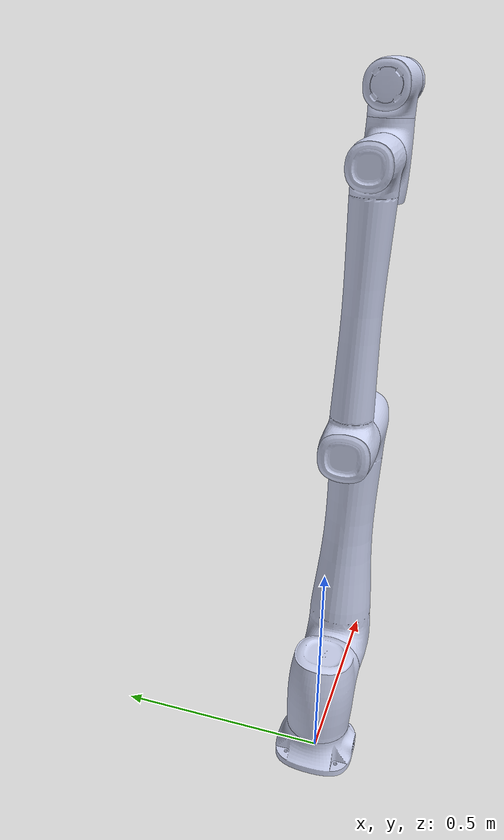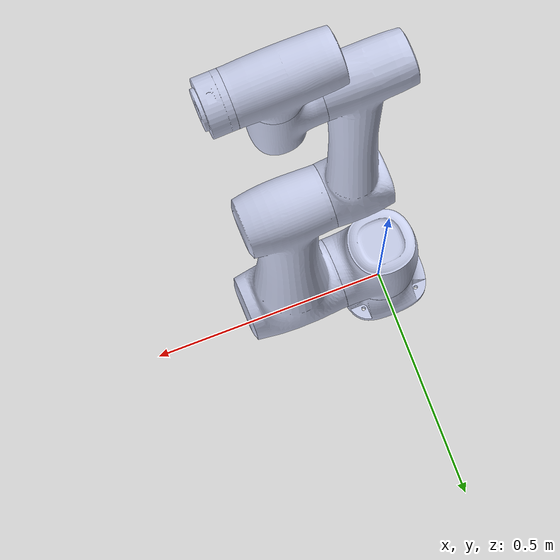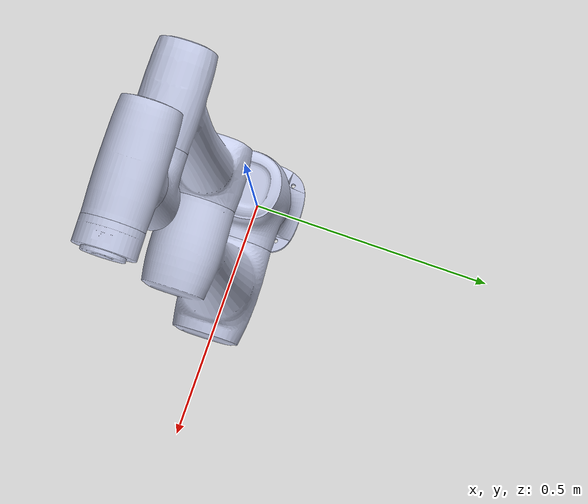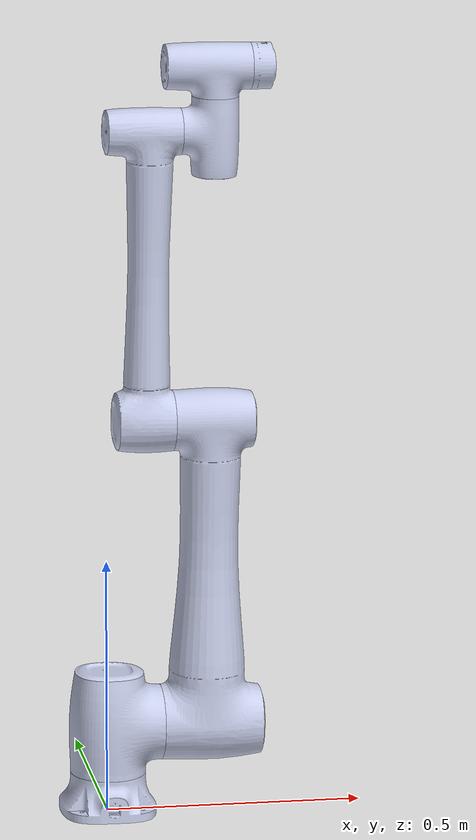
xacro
<?xml version="1.0"?>
<robot xmlns:xacro="http://www.ros.org/wiki/xacro" name="dobot_cr10">
    <xacro:arg name="initial_positions_file" default="initial_positions.yaml" />

    <!-- Import dobot_cr10 urdf file -->
    <xacro:include filename="$(find dobot_cr10_description)/urdf/dobot_cr10.urdf.xacro" />

    <!-- Import control_xacro -->

    <!-- Commented out - using ros2_control from main URDF instead -->

</robot>

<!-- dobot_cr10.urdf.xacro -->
<robot xmlns:xacro="http://www.ros.org/wiki/xacro" name="dobot_cr10">

  <!-- ===== PARAMETERS ===== -->
  <xacro:arg name="use_fake_hardware" default="false"/>
  <xacro:arg name="robot_ip" default="192.168.5.1"/>
  <xacro:arg name="robot_port" default="29999"/>
  <xacro:arg name="prefix" default=""/>

  <!-- ===== MATERIAL DEFINITIONS ===== -->
  <material name="dobot_blue">
    <color rgba="0.79216 0.81961 0.92941 1"/>
  </material>

  <!-- ===== BASE LINK ===== -->
  <link name="$(arg prefix)base_link">
    <inertial>
      <origin xyz="0.00043171 -0.0017808 0.034092" rpy="0 0 0"/>
      <mass value="1.7287"/>
      <inertia ixx="0.0041823" ixy="2.4931E-06" ixz="3.1074E-05"
               iyy="0.0040497" iyz="-3.8611E-05" izz="0.0065168"/>
    </inertial>
    <visual>
      <origin xyz="0 0 0" rpy="0 0 0"/>
      <geometry>
        <mesh filename="package://dobot_cr10_description/meshes/base_link.STL"/>
      </geometry>
      <material name="dobot_blue"/>
    </visual>
    <collision>
      <origin xyz="0 0 0" rpy="0 0 0"/>
      <geometry>
        <mesh filename="package://dobot_cr10_description/meshes/base_link.STL"/>
      </geometry>
    </collision>
  </link>

  <!-- ===== JOINT 1 ===== -->
  <joint name="$(arg prefix)joint_1" type="revolute">
    <origin xyz="0.0010064 -0.0021532 0.078964" rpy="0.026164 0.01264 0.02652"/>
    <parent link="$(arg prefix)base_link"/>
    <child link="$(arg prefix)link_1"/>
    <axis xyz="0 0 1"/>
    <limit lower="-6.28" upper="6.28" effort="150" velocity="2"/>
    <dynamics damping="0.0" friction="0.0"/>
  </joint>

  <!-- ===== LINK 1 ===== -->
  <link name="$(arg prefix)link_1">
    <inertial>
      <origin xyz="0.010819 -1.564E-06 0.10034" rpy="0 0 0"/>
      <mass value="4.1649"/>
      <inertia ixx="0.018824" ixy="1.0402E-07" ixz="9.6799E-05"
               iyy="0.020714" iyz="2.2865E-07" izz="0.014575"/>
    </inertial>
    <visual>
      <origin xyz="0 0 0" rpy="0 0 0"/>
      <geometry>
        <mesh filename="package://dobot_cr10_description/meshes/Link-1.STL"/>
      </geometry>
      <material name="dobot_blue"/>
    </visual>
    <collision>
      <origin xyz="0 0 0" rpy="0 0 0"/>
      <geometry>
        <mesh filename="package://dobot_cr10_description/meshes/Link-1.STL"/>
      </geometry>
    </collision>
  </link>

  <!-- ===== JOINT 2 ===== -->
  <joint name="$(arg prefix)joint_2" type="revolute">
    <origin xyz="0.102 0 0.0975" rpy="0 0 0"/>
    <parent link="$(arg prefix)link_1"/>
    <child link="$(arg prefix)link_2"/>
    <axis xyz="1 0 0"/>
    <limit lower="-3.14" upper="3.14" effort="150" velocity="2"/>
    <dynamics damping="0.0" friction="0.0"/>
  </joint>

  <!-- ===== LINK 2 ===== -->
  <link name="$(arg prefix)link_2">
    <inertial>
      <origin xyz="0.093151 -1.0433E-07 0.2463" rpy="0 0 0"/>
      <mass value="11.314"/>
      <inertia ixx="0.29972" ixy="6.9535E-08" ixz="0.0033374"
               iyy="0.30683" iyz="-1.3133E-08" izz="0.033617"/>
    </inertial>
    <visual>
      <origin xyz="0 0 0" rpy="0 0 0"/>
      <geometry>
        <mesh filename="package://dobot_cr10_description/meshes/Link-2.STL"/>
      </geometry>
      <material name="dobot_blue"/>
    </visual>
    <collision>
      <origin xyz="0 0 0" rpy="0 0 0"/>
      <geometry>
        <mesh filename="package://dobot_cr10_description/meshes/Link-2.STL"/>
      </geometry>
    </collision>
  </link>

  <!-- ===== JOINT 3 ===== -->
  <joint name="$(arg prefix)joint_3" type="revolute">
    <origin xyz="0.015 0 0.607" rpy="0 0 0"/>
    <parent link="$(arg prefix)link_2"/>
    <child link="$(arg prefix)link_3"/>
    <axis xyz="1 0 0"/>
    <limit lower="-6.28" upper="6.28" effort="100" velocity="2"/>
    <dynamics damping="0.0" friction="0.0"/>
  </joint>

  <!-- ===== LINK 3 ===== -->
  <link name="$(arg prefix)link_3">
    <inertial>
      <origin xyz="-0.0547042900306558 4.69055676521025E-07 0.270861245240957" rpy="0 0 0"/>
      <mass value="4.89191478863776"/>
      <inertia ixx="0.238369162166941" ixy="7.61885944041775E-08" ixz="0.00257869019852994"
               iyy="0.239673383068356" iyz="1.89742633549028E-08" izz="0.00715728937113017"/>
    </inertial>
    <visual>
      <origin xyz="0 0 0" rpy="0 0 0"/>
      <geometry>
        <mesh filename="package://dobot_cr10_description/meshes/Link-3.STL"/>
      </geometry>
      <material name="dobot_blue"/>
    </visual>
    <collision>
      <origin xyz="0 0 0" rpy="0 0 0"/>
      <geometry>
        <mesh filename="package://dobot_cr10_description/meshes/Link-3.STL"/>
      </geometry>
    </collision>
  </link>

  <!-- ===== JOINT 4 ===== -->
  <joint name="$(arg prefix)joint_4" type="revolute">
    <origin xyz="0.0075 0 0.568" rpy="0 0 0"/>
    <parent link="$(arg prefix)link_3"/>
    <child link="$(arg prefix)link_4"/>
    <axis xyz="1 0 0"/>
    <limit lower="-6.28" upper="6.28" effort="50" velocity="3"/>
    <dynamics damping="0.0" friction="0.0"/>
  </joint>

  <!-- ===== LINK 4 ===== -->
  <link name="$(arg prefix)link_4">
    <inertial>
      <origin xyz="0.060609253116529 3.28831690179161E-07 -0.00798726712724762" rpy="0 0 0"/>
      <mass value="1.16884724073703"/>
      <inertia ixx="0.00273281500514179" ixy="3.24876099751998E-09" ixz="5.4505786609508E-05"
               iyy="0.00292615337233013" iyz="7.60515741522402E-09" izz="0.00150056730806779"/>
    </inertial>
    <visual>
      <origin xyz="0 0 0" rpy="0 0 0"/>
      <geometry>
        <mesh filename="package://dobot_cr10_description/meshes/Link-4.STL"/>
      </geometry>
      <material name="dobot_blue"/>
    </visual>
    <collision>
      <origin xyz="0 0 0" rpy="0 0 0"/>
      <geometry>
        <mesh filename="package://dobot_cr10_description/meshes/Link-4.STL"/>
      </geometry>
    </collision>
  </link>

  <!-- ===== JOINT 5 ===== -->
  <joint name="$(arg prefix)joint_5" type="revolute">
    <origin xyz="0.0665 0 0.068" rpy="0 0 0"/>
    <parent link="$(arg prefix)link_4"/>
    <child link="$(arg prefix)link_5"/>
    <axis xyz="0 0 1"/>
    <limit lower="-6.28" upper="6.28" effort="50" velocity="3"/>
    <dynamics damping="0.0" friction="0.0"/>
  </joint>

  <!-- ===== LINK 5 ===== -->
  <link name="$(arg prefix)link_5">
    <inertial>
      <origin xyz="-0.0145467666760558 -6.13652700914707E-08 0.0524512917928925" rpy="0 0 0"/>
      <mass value="1.22302430677084"/>
      <inertia ixx="0.00149256719455683" ixy="2.62809254507745E-09" ixz="8.41893886453018E-05"
               iyy="0.00337901308952554" iyz="7.48934876097148E-09" izz="0.00323300506255286"/>
    </inertial>
    <visual>
      <origin xyz="0 0 0" rpy="0 0 0"/>
      <geometry>
        <mesh filename="package://dobot_cr10_description/meshes/Link-5.STL"/>
      </geometry>
      <material name="dobot_blue"/>
    </visual>
    <collision>
      <origin xyz="0 0 0" rpy="0 0 0"/>
      <geometry>
        <mesh filename="package://dobot_cr10_description/meshes/Link-5.STL"/>
      </geometry>
    </collision>
  </link>

  <!-- ===== JOINT 6 ===== -->
  <joint name="$(arg prefix)joint_6" type="revolute">
    <origin xyz="0.0665 0 0.057" rpy="0 0 0"/>
    <parent link="$(arg prefix)link_5"/>
    <child link="$(arg prefix)link_6"/>
    <axis xyz="1 0 0"/>
    <limit lower="-6.28" upper="6.28" effort="30" velocity="3"/>
    <dynamics damping="0.0" friction="0.0"/>
  </joint>

  <!-- ===== LINK 6 ===== -->
  <link name="$(arg prefix)link_6">
    <inertial>
      <origin xyz="0.0233267236804897 -6.60182229233081E-08 -0.000136438466677768" rpy="0 0 0"/>
      <mass value="0.207475731449731"/>
      <inertia ixx="0.000209920992588732" ixy="-3.57874154906935E-13" ixz="-2.86594531707672E-08"
               iyy="0.000113179735128728" iyz="-4.70278835778436E-14" izz="0.000113727016310527"/>
    </inertial>
    <visual>
      <origin xyz="0 0 0" rpy="0 0 0"/>
      <geometry>
        <mesh filename="package://dobot_cr10_description/meshes/Link-6.STL"/>
      </geometry>
      <material name="dobot_blue"/>
    </visual>
    <collision>
      <origin xyz="0 0 0" rpy="0 0 0"/>
      <geometry>
        <mesh filename="package://dobot_cr10_description/meshes/Link-6.STL"/>
      </geometry>
    </collision>
  </link>

  <!-- ===== TOOL FLANGE ===== -->
  <link name="$(arg prefix)tool0"/>

  <joint name="$(arg prefix)link_6_tool0" type="fixed">
    <parent link="$(arg prefix)link_6"/>
    <child link="$(arg prefix)tool0"/>
    <origin xyz="0.05 0 0" rpy="0 0 0"/>
  </joint>

  <!-- ===== ROS2_CONTROL ===== -->
  <ros2_control name="DobotCR10" type="system">
    <hardware>
      <xacro:if value="$(arg use_fake_hardware)">
        <plugin>mock_components/GenericSystem</plugin>
      </xacro:if>
      <xacro:unless value="$(arg use_fake_hardware)">
        <plugin>dobot_cr10_hardware/DobotCR10HardwareInterface</plugin>
        <param name="robot_ip">$(arg robot_ip)</param>
        <param name="robot_port">$(arg robot_port)</param>
      </xacro:unless>
    </hardware>

    <joint name="joint_1">
      <command_interface name="position">
        <param name="min">-6.28</param>
        <param name="max">6.28</param>
      </command_interface>
      <state_interface name="position"/>
      <state_interface name="velocity"/>
    </joint>

    <joint name="joint_2">
      <command_interface name="position">
        <param name="min">-3.14</param>
        <param name="max">3.14</param>
      </command_interface>
      <state_interface name="position"/>
      <state_interface name="velocity"/>
    </joint>

    <joint name="joint_3">
      <command_interface name="position">
        <param name="min">-6.28</param>
        <param name="max">6.28</param>
      </command_interface>
      <state_interface name="position"/>
      <state_interface name="velocity"/>
    </joint>

    <joint name="joint_4">
      <command_interface name="position">
        <param name="min">-6.28</param>
        <param name="max">6.28</param>
      </command_interface>
      <state_interface name="position"/>
      <state_interface name="velocity"/>
    </joint>

    <joint name="joint_5">
      <command_interface name="position">
        <param name="min">-6.28</param>
        <param name="max">6.28</param>
      </command_interface>
      <state_interface name="position"/>
      <state_interface name="velocity"/>
    </joint>

    <joint name="joint_6">
      <command_interface name="position">
        <param name="min">-6.28</param>
        <param name="max">6.28</param>
      </command_interface>
      <state_interface name="position"/>
      <state_interface name="velocity"/>
    </joint>

  </ros2_control>

</robot>
